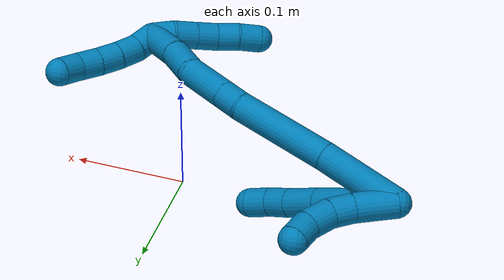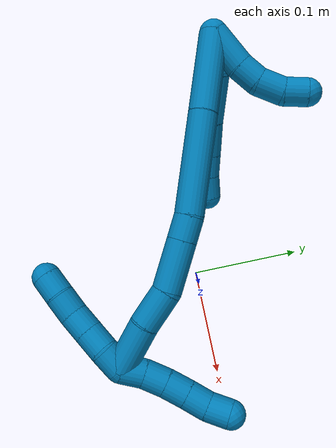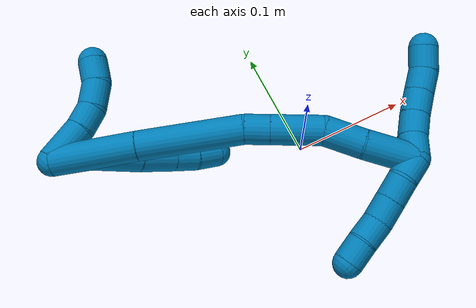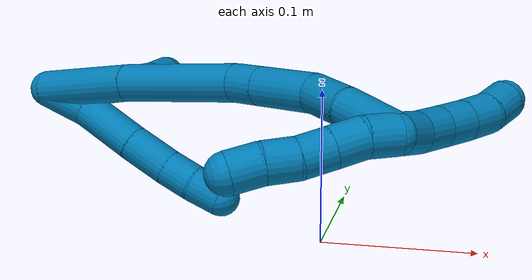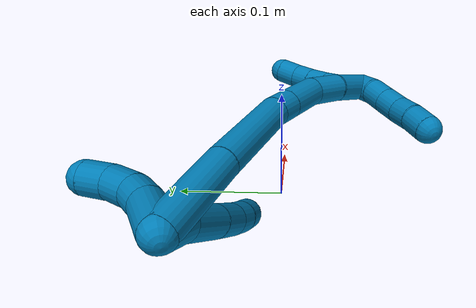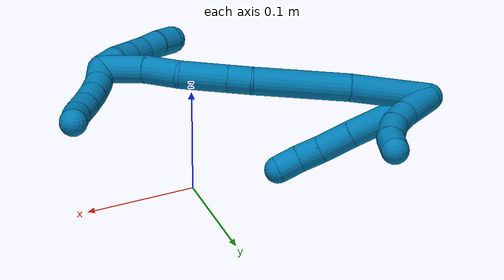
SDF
<sdf version="1.7">
 <world name="default">
  <model name="9">
   <static>0</static>
   <link name="9">
    <collision name="collision-cylinder-e_1_2_8">
     <pose>0.010625 -0.00347 0.011925 0.283165 0.707666 0.105202</pose>
     <geometry><cylinder><radius>0.0125</radius><length>0.032689</length></cylinder></geometry>
     <surface>
      <friction><ode><mu>1.16</mu><mu2>1.16</mu2><slip1>0</slip1><slip2>0</slip2></ode></friction>
      <contact><ode><kp>1e+06</kp><kd>1</kd><max_vel>0</max_vel><min_depth>0.001</min_depth></ode></contact>
     </surface>
    </collision>
    <visual name="visual-cylinder-e_1_2_8">
     <pose>0.010625 -0.00347 0.011925 0.283165 0.707666 0.105202</pose>
     <geometry><cylinder><radius>0.0125</radius><length>0.032689</length></cylinder></geometry>
     <material><ambient>0 0.490196 0.709804 1</ambient></material>
    </visual>
    <collision name="collision-cylinder-e_2_8_9">
     <pose>0.03754 -0.01366 0.036818 0.478126 0.839894 0.216797</pose>
     <geometry><cylinder><radius>0.0125</radius><length>0.043758</length></cylinder></geometry>
     <surface>
      <friction><ode><mu>1.16</mu><mu2>1.16</mu2><slip1>0</slip1><slip2>0</slip2></ode></friction>
      <contact><ode><kp>1e+06</kp><kd>1</kd><max_vel>0</max_vel><min_depth>0.001</min_depth></ode></contact>
     </surface>
    </collision>
    <visual name="visual-cylinder-e_2_8_9">
     <pose>0.03754 -0.01366 0.036818 0.478126 0.839894 0.216797</pose>
     <geometry><cylinder><radius>0.0125</radius><length>0.043758</length></cylinder></geometry>
     <material><ambient>0 0.490196 0.709804 1</ambient></material>
    </visual>
    <collision name="collision-cylinder-e_3_9_10">
     <pose>0.065245 -0.024463 0.059623 0.393371 0.819959 0.17277</pose>
     <geometry><cylinder><radius>0.0125</radius><length>0.031225</length></cylinder></geometry>
     <surface>
      <friction><ode><mu>1.16</mu><mu2>1.16</mu2><slip1>0</slip1><slip2>0</slip2></ode></friction>
      <contact><ode><kp>1e+06</kp><kd>1</kd><max_vel>0</max_vel><min_depth>0.001</min_depth></ode></contact>
     </surface>
    </collision>
    <visual name="visual-cylinder-e_3_9_10">
     <pose>0.065245 -0.024463 0.059623 0.393371 0.819959 0.17277</pose>
     <geometry><cylinder><radius>0.0125</radius><length>0.031225</length></cylinder></geometry>
     <material><ambient>0 0.490196 0.709804 1</ambient></material>
    </visual>
    <collision name="collision-cylinder-e_4_10_11">
     <pose>0.083879 -0.031673 0.076341 0.426598 0.76257 0.173232</pose>
     <geometry><cylinder><radius>0.0125</radius><length>0.020901</length></cylinder></geometry>
     <surface>
      <friction><ode><mu>1.16</mu><mu2>1.16</mu2><slip1>0</slip1><slip2>0</slip2></ode></friction>
      <contact><ode><kp>1e+06</kp><kd>1</kd><max_vel>0</max_vel><min_depth>0.001</min_depth></ode></contact>
     </surface>
    </collision>
    <visual name="visual-cylinder-e_4_10_11">
     <pose>0.083879 -0.031673 0.076341 0.426598 0.76257 0.173232</pose>
     <geometry><cylinder><radius>0.0125</radius><length>0.020901</length></cylinder></geometry>
     <material><ambient>0 0.490196 0.709804 1</ambient></material>
    </visual>
    <collision name="collision-cylinder-e_5_11_6">
     <pose>0.098126 -0.036854 0.09104 0.256931 0.715536 0.096513</pose>
     <geometry><cylinder><radius>0.0125</radius><length>0.021427</length></cylinder></geometry>
     <surface>
      <friction><ode><mu>1.16</mu><mu2>1.16</mu2><slip1>0</slip1><slip2>0</slip2></ode></friction>
      <contact><ode><kp>1e+06</kp><kd>1</kd><max_vel>0</max_vel><min_depth>0.001</min_depth></ode></contact>
     </surface>
    </collision>
    <visual name="visual-cylinder-e_5_11_6">
     <pose>0.098126 -0.036854 0.09104 0.256931 0.715536 0.096513</pose>
     <geometry><cylinder><radius>0.0125</radius><length>0.021427</length></cylinder></geometry>
     <material><ambient>0 0.490196 0.709804 1</ambient></material>
    </visual>
    <collision name="collision-cylinder-e_1_2_12">
     <pose>0.002701 0.003348 0.017386 -0.190235 0.151362 -0.014468</pose>
     <geometry><cylinder><radius>0.0125</radius><length>0.035819</length></cylinder></geometry>
     <surface>
      <friction><ode><mu>1.16</mu><mu2>1.16</mu2><slip1>0</slip1><slip2>0</slip2></ode></friction>
      <contact><ode><kp>1e+06</kp><kd>1</kd><max_vel>0</max_vel><min_depth>0.001</min_depth></ode></contact>
     </surface>
    </collision>
    <visual name="visual-cylinder-e_1_2_12">
     <pose>0.002701 0.003348 0.017386 -0.190235 0.151362 -0.014468</pose>
     <geometry><cylinder><radius>0.0125</radius><length>0.035819</length></cylinder></geometry>
     <material><ambient>0 0.490196 0.709804 1</ambient></material>
    </visual>
    <collision name="collision-cylinder-e_2_12_13">
     <pose>0.006009 0.010204 0.044265 -0.353997 0.060004 -0.010736</pose>
     <geometry><cylinder><radius>0.0125</radius><length>0.020279</length></cylinder></geometry>
     <surface>
      <friction><ode><mu>1.16</mu><mu2>1.16</mu2><slip1>0</slip1><slip2>0</slip2></ode></friction>
      <contact><ode><kp>1e+06</kp><kd>1</kd><max_vel>0</max_vel><min_depth>0.001</min_depth></ode></contact>
     </surface>
    </collision>
    <visual name="visual-cylinder-e_2_12_13">
     <pose>0.006009 0.010204 0.044265 -0.353997 0.060004 -0.010736</pose>
     <geometry><cylinder><radius>0.0125</radius><length>0.020279</length></cylinder></geometry>
     <material><ambient>0 0.490196 0.709804 1</ambient></material>
    </visual>
    <collision name="collision-cylinder-e_3_13_14">
     <pose>0.0058 0.020698 0.063008 -0.646818 -0.070399 0.023605</pose>
     <geometry><cylinder><radius>0.0125</radius><length>0.023238</length></cylinder></geometry>
     <surface>
      <friction><ode><mu>1.16</mu><mu2>1.16</mu2><slip1>0</slip1><slip2>0</slip2></ode></friction>
      <contact><ode><kp>1e+06</kp><kd>1</kd><max_vel>0</max_vel><min_depth>0.001</min_depth></ode></contact>
     </surface>
    </collision>
    <visual name="visual-cylinder-e_3_13_14">
     <pose>0.0058 0.020698 0.063008 -0.646818 -0.070399 0.023605</pose>
     <geometry><cylinder><radius>0.0125</radius><length>0.023238</length></cylinder></geometry>
     <material><ambient>0 0.490196 0.709804 1</ambient></material>
    </visual>
    <collision name="collision-cylinder-e_4_14_5">
     <pose>0.002586 0.035872 0.078082 -0.952551 -0.234053 0.12115</pose>
     <geometry><cylinder><radius>0.0125</radius><length>0.020663</length></cylinder></geometry>
     <surface>
      <friction><ode><mu>1.16</mu><mu2>1.16</mu2><slip1>0</slip1><slip2>0</slip2></ode></friction>
      <contact><ode><kp>1e+06</kp><kd>1</kd><max_vel>0</max_vel><min_depth>0.001</min_depth></ode></contact>
     </surface>
    </collision>
    <visual name="visual-cylinder-e_4_14_5">
     <pose>0.002586 0.035872 0.078082 -0.952551 -0.234053 0.12115</pose>
     <geometry><cylinder><radius>0.0125</radius><length>0.020663</length></cylinder></geometry>
     <material><ambient>0 0.490196 0.709804 1</ambient></material>
    </visual>
    <collision name="collision-cylinder-e_1_2_15">
     <pose>0.007925 -0.021542 0.027737 0.660347 0.221951 0.076344</pose>
     <geometry><cylinder><radius>0.0125</radius><length>0.072006</length></cylinder></geometry>
     <surface>
      <friction><ode><mu>1.16</mu><mu2>1.16</mu2><slip1>0</slip1><slip2>0</slip2></ode></friction>
      <contact><ode><kp>1e+06</kp><kd>1</kd><max_vel>0</max_vel><min_depth>0.001</min_depth></ode></contact>
     </surface>
    </collision>
    <visual name="visual-cylinder-e_1_2_15">
     <pose>0.007925 -0.021542 0.027737 0.660347 0.221951 0.076344</pose>
     <geometry><cylinder><radius>0.0125</radius><length>0.072006</length></cylinder></geometry>
     <material><ambient>0 0.490196 0.709804 1</ambient></material>
    </visual>
    <collision name="collision-cylinder-e_2_15_16">
     <pose>0.027918 -0.068547 0.088916 0.650747 0.279576 0.094867</pose>
     <geometry><cylinder><radius>0.0125</radius><length>0.08746</length></cylinder></geometry>
     <surface>
      <friction><ode><mu>1.16</mu><mu2>1.16</mu2><slip1>0</slip1><slip2>0</slip2></ode></friction>
      <contact><ode><kp>1e+06</kp><kd>1</kd><max_vel>0</max_vel><min_depth>0.001</min_depth></ode></contact>
     </surface>
    </collision>
    <visual name="visual-cylinder-e_2_15_16">
     <pose>0.027918 -0.068547 0.088916 0.650747 0.279576 0.094867</pose>
     <geometry><cylinder><radius>0.0125</radius><length>0.08746</length></cylinder></geometry>
     <material><ambient>0 0.490196 0.709804 1</ambient></material>
    </visual>
    <collision name="collision-cylinder-e_3_16_17">
     <pose>0.043838 -0.101025 0.129164 0.800608 0.37542 0.160408</pose>
     <geometry><cylinder><radius>0.0125</radius><length>0.021014</length></cylinder></geometry>
     <surface>
      <friction><ode><mu>1.16</mu><mu2>1.16</mu2><slip1>0</slip1><slip2>0</slip2></ode></friction>
      <contact><ode><kp>1e+06</kp><kd>1</kd><max_vel>0</max_vel><min_depth>0.001</min_depth></ode></contact>
     </surface>
    </collision>
    <visual name="visual-cylinder-e_3_16_17">
     <pose>0.043838 -0.101025 0.129164 0.800608 0.37542 0.160408</pose>
     <geometry><cylinder><radius>0.0125</radius><length>0.021014</length></cylinder></geometry>
     <material><ambient>0 0.490196 0.709804 1</ambient></material>
    </visual>
    <collision name="collision-cylinder-e_4_17_18">
     <pose>0.055581 -0.122416 0.149903 0.800985 0.375486 0.16052</pose>
     <geometry><cylinder><radius>0.0125</radius><length>0.043034</length></cylinder></geometry>
     <surface>
      <friction><ode><mu>1.16</mu><mu2>1.16</mu2><slip1>0</slip1><slip2>0</slip2></ode></friction>
      <contact><ode><kp>1e+06</kp><kd>1</kd><max_vel>0</max_vel><min_depth>0.001</min_depth></ode></contact>
     </surface>
    </collision>
    <visual name="visual-cylinder-e_4_17_18">
     <pose>0.055581 -0.122416 0.149903 0.800985 0.375486 0.16052</pose>
     <geometry><cylinder><radius>0.0125</radius><length>0.043034</length></cylinder></geometry>
     <material><ambient>0 0.490196 0.709804 1</ambient></material>
    </visual>
    <collision name="collision-cylinder-e_5_18_19">
     <pose>0.07131 -0.149896 0.170098 1.12507 0.494813 0.315846</pose>
     <geometry><cylinder><radius>0.0125</radius><length>0.033012</length></cylinder></geometry>
     <surface>
      <friction><ode><mu>1.16</mu><mu2>1.16</mu2><slip1>0</slip1><slip2>0</slip2></ode></friction>
      <contact><ode><kp>1e+06</kp><kd>1</kd><max_vel>0</max_vel><min_depth>0.001</min_depth></ode></contact>
     </surface>
    </collision>
    <visual name="visual-cylinder-e_5_18_19">
     <pose>0.07131 -0.149896 0.170098 1.12507 0.494813 0.315846</pose>
     <geometry><cylinder><radius>0.0125</radius><length>0.033012</length></cylinder></geometry>
     <material><ambient>0 0.490196 0.709804 1</ambient></material>
    </visual>
    <collision name="collision-cylinder-e_6_19_1">
     <pose>0.091328 -0.17831 0.185839 1.01637 0.594801 0.338157</pose>
     <geometry><cylinder><radius>0.0125</radius><length>0.043474</length></cylinder></geometry>
     <surface>
      <friction><ode><mu>1.16</mu><mu2>1.16</mu2><slip1>0</slip1><slip2>0</slip2></ode></friction>
      <contact><ode><kp>1e+06</kp><kd>1</kd><max_vel>0</max_vel><min_depth>0.001</min_depth></ode></contact>
     </surface>
    </collision>
    <visual name="visual-cylinder-e_6_19_1">
     <pose>0.091328 -0.17831 0.185839 1.01637 0.594801 0.338157</pose>
     <geometry><cylinder><radius>0.0125</radius><length>0.043474</length></cylinder></geometry>
     <material><ambient>0 0.490196 0.709804 1</ambient></material>
    </visual>
    <collision name="collision-cylinder-e_1_1_20">
     <pose>0.102406 -0.195872 0.185637 2.9127 -0.110469 -0.896682</pose>
     <geometry><cylinder><radius>0.0125</radius><length>0.02</length></cylinder></geometry>
     <surface>
      <friction><ode><mu>1.16</mu><mu2>1.16</mu2><slip1>0</slip1><slip2>0</slip2></ode></friction>
      <contact><ode><kp>1e+06</kp><kd>1</kd><max_vel>0</max_vel><min_depth>0.001</min_depth></ode></contact>
     </surface>
    </collision>
    <visual name="visual-cylinder-e_1_1_20">
     <pose>0.102406 -0.195872 0.185637 2.9127 -0.110469 -0.896682</pose>
     <geometry><cylinder><radius>0.0125</radius><length>0.02</length></cylinder></geometry>
     <material><ambient>0 0.490196 0.709804 1</ambient></material>
    </visual>
    <collision name="collision-cylinder-e_2_20_21">
     <pose>0.102307 -0.199699 0.166132 2.983 0.100498 1.12849</pose>
     <geometry><cylinder><radius>0.0125</radius><length>0.02</length></cylinder></geometry>
     <surface>
      <friction><ode><mu>1.16</mu><mu2>1.16</mu2><slip1>0</slip1><slip2>0</slip2></ode></friction>
      <contact><ode><kp>1e+06</kp><kd>1</kd><max_vel>0</max_vel><min_depth>0.001</min_depth></ode></contact>
     </surface>
    </collision>
    <visual name="visual-cylinder-e_2_20_21">
     <pose>0.102307 -0.199699 0.166132 2.983 0.100498 1.12849</pose>
     <geometry><cylinder><radius>0.0125</radius><length>0.02</length></cylinder></geometry>
     <material><ambient>0 0.490196 0.709804 1</ambient></material>
    </visual>
    <collision name="collision-cylinder-e_3_21_22">
     <pose>0.104175 -0.202849 0.146471 2.98244 0.086597 0.995385</pose>
     <geometry><cylinder><radius>0.0125</radius><length>0.02</length></cylinder></geometry>
     <surface>
      <friction><ode><mu>1.16</mu><mu2>1.16</mu2><slip1>0</slip1><slip2>0</slip2></ode></friction>
      <contact><ode><kp>1e+06</kp><kd>1</kd><max_vel>0</max_vel><min_depth>0.001</min_depth></ode></contact>
     </surface>
    </collision>
    <visual name="visual-cylinder-e_3_21_22">
     <pose>0.104175 -0.202849 0.146471 2.98244 0.086597 0.995385</pose>
     <geometry><cylinder><radius>0.0125</radius><length>0.02</length></cylinder></geometry>
     <material><ambient>0 0.490196 0.709804 1</ambient></material>
    </visual>
    <collision name="collision-cylinder-e_4_22_23">
     <pose>0.104216 -0.205667 0.126746 3.01689 -0.082494 -1.16819</pose>
     <geometry><cylinder><radius>0.0125</radius><length>0.02</length></cylinder></geometry>
     <surface>
      <friction><ode><mu>1.16</mu><mu2>1.16</mu2><slip1>0</slip1><slip2>0</slip2></ode></friction>
      <contact><ode><kp>1e+06</kp><kd>1</kd><max_vel>0</max_vel><min_depth>0.001</min_depth></ode></contact>
     </surface>
    </collision>
    <visual name="visual-cylinder-e_4_22_23">
     <pose>0.104216 -0.205667 0.126746 3.01689 -0.082494 -1.16819</pose>
     <geometry><cylinder><radius>0.0125</radius><length>0.02</length></cylinder></geometry>
     <material><ambient>0 0.490196 0.709804 1</ambient></material>
    </visual>
    <collision name="collision-cylinder-e_5_23_4">
     <pose>0.103961 -0.20782 0.106915 3.05002 0.056877 1.11121</pose>
     <geometry><cylinder><radius>0.0125</radius><length>0.02</length></cylinder></geometry>
     <surface>
      <friction><ode><mu>1.16</mu><mu2>1.16</mu2><slip1>0</slip1><slip2>0</slip2></ode></friction>
      <contact><ode><kp>1e+06</kp><kd>1</kd><max_vel>0</max_vel><min_depth>0.001</min_depth></ode></contact>
     </surface>
    </collision>
    <visual name="visual-cylinder-e_5_23_4">
     <pose>0.103961 -0.20782 0.106915 3.05002 0.056877 1.11121</pose>
     <geometry><cylinder><radius>0.0125</radius><length>0.02</length></cylinder></geometry>
     <material><ambient>0 0.490196 0.709804 1</ambient></material>
    </visual>
    <collision name="collision-cylinder-e_1_1_24">
     <pose>0.103689 -0.186301 0.202132 -0.820863 0.018002 -0.007834</pose>
     <geometry><cylinder><radius>0.0125</radius><length>0.02</length></cylinder></geometry>
     <surface>
      <friction><ode><mu>1.16</mu><mu2>1.16</mu2><slip1>0</slip1><slip2>0</slip2></ode></friction>
      <contact><ode><kp>1e+06</kp><kd>1</kd><max_vel>0</max_vel><min_depth>0.001</min_depth></ode></contact>
     </surface>
    </collision>
    <visual name="visual-cylinder-e_1_1_24">
     <pose>0.103689 -0.186301 0.202132 -0.820863 0.018002 -0.007834</pose>
     <geometry><cylinder><radius>0.0125</radius><length>0.02</length></cylinder></geometry>
     <material><ambient>0 0.490196 0.709804 1</ambient></material>
    </visual>
    <collision name="collision-cylinder-e_2_24_25">
     <pose>0.10328 -0.173155 0.21705 -0.623614 -0.058859 0.018977</pose>
     <geometry><cylinder><radius>0.0125</radius><length>0.02</length></cylinder></geometry>
     <surface>
      <friction><ode><mu>1.16</mu><mu2>1.16</mu2><slip1>0</slip1><slip2>0</slip2></ode></friction>
      <contact><ode><kp>1e+06</kp><kd>1</kd><max_vel>0</max_vel><min_depth>0.001</min_depth></ode></contact>
     </surface>
    </collision>
    <visual name="visual-cylinder-e_2_24_25">
     <pose>0.10328 -0.173155 0.21705 -0.623614 -0.058859 0.018977</pose>
     <geometry><cylinder><radius>0.0125</radius><length>0.02</length></cylinder></geometry>
     <material><ambient>0 0.490196 0.709804 1</ambient></material>
    </visual>
    <collision name="collision-cylinder-e_3_25_26">
     <pose>0.102082 -0.162225 0.233733 -0.53637 -0.061029 0.016776</pose>
     <geometry><cylinder><radius>0.0125</radius><length>0.02</length></cylinder></geometry>
     <surface>
      <friction><ode><mu>1.16</mu><mu2>1.16</mu2><slip1>0</slip1><slip2>0</slip2></ode></friction>
      <contact><ode><kp>1e+06</kp><kd>1</kd><max_vel>0</max_vel><min_depth>0.001</min_depth></ode></contact>
     </surface>
    </collision>
    <visual name="visual-cylinder-e_3_25_26">
     <pose>0.102082 -0.162225 0.233733 -0.53637 -0.061029 0.016776</pose>
     <geometry><cylinder><radius>0.0125</radius><length>0.02</length></cylinder></geometry>
     <material><ambient>0 0.490196 0.709804 1</ambient></material>
    </visual>
    <collision name="collision-cylinder-e_4_26_27">
     <pose>0.100462 -0.152401 0.251069 -0.494702 -0.101171 0.025568</pose>
     <geometry><cylinder><radius>0.0125</radius><length>0.02</length></cylinder></geometry>
     <surface>
      <friction><ode><mu>1.16</mu><mu2>1.16</mu2><slip1>0</slip1><slip2>0</slip2></ode></friction>
      <contact><ode><kp>1e+06</kp><kd>1</kd><max_vel>0</max_vel><min_depth>0.001</min_depth></ode></contact>
     </surface>
    </collision>
    <visual name="visual-cylinder-e_4_26_27">
     <pose>0.100462 -0.152401 0.251069 -0.494702 -0.101171 0.025568</pose>
     <geometry><cylinder><radius>0.0125</radius><length>0.02</length></cylinder></geometry>
     <material><ambient>0 0.490196 0.709804 1</ambient></material>
    </visual>
    <collision name="collision-cylinder-e_5_27_3">
     <pose>0.096389 -0.141952 0.26743 -0.645322 -0.311309 0.104837</pose>
     <geometry><cylinder><radius>0.0125</radius><length>0.02</length></cylinder></geometry>
     <surface>
      <friction><ode><mu>1.16</mu><mu2>1.16</mu2><slip1>0</slip1><slip2>0</slip2></ode></friction>
      <contact><ode><kp>1e+06</kp><kd>1</kd><max_vel>0</max_vel><min_depth>0.001</min_depth></ode></contact>
     </surface>
    </collision>
    <visual name="visual-cylinder-e_5_27_3">
     <pose>0.096389 -0.141952 0.26743 -0.645322 -0.311309 0.104837</pose>
     <geometry><cylinder><radius>0.0125</radius><length>0.02</length></cylinder></geometry>
     <material><ambient>0 0.490196 0.709804 1</ambient></material>
    </visual>
    <collision name="collision-sphere-3">
     <pose>0.093326 -0.136226 0.275035 0 -0 0</pose>
     <geometry><sphere><radius>0.0125</radius></sphere></geometry>
     <surface>
      <friction><ode><mu>1.16</mu><mu2>1.16</mu2><slip1>0</slip1><slip2>0</slip2></ode></friction>
      <contact><ode><kp>1e+06</kp><kd>1</kd><max_vel>0</max_vel><min_depth>0.001</min_depth></ode></contact>
     </surface>
    </collision>
    <visual name="visual-sphere-3">
     <pose>0.093326 -0.136226 0.275035 0 -0 0</pose>
     <geometry><sphere><radius>0.0125</radius></sphere></geometry>
     <material><ambient>0 0.490196 0.709804 1</ambient></material>
    </visual>
    <collision name="collision-sphere-27">
     <pose>0.099452 -0.147677 0.259825 0 -0 0</pose>
     <geometry><sphere><radius>0.0125</radius></sphere></geometry>
     <surface>
      <friction><ode><mu>1.16</mu><mu2>1.16</mu2><slip1>0</slip1><slip2>0</slip2></ode></friction>
      <contact><ode><kp>1e+06</kp><kd>1</kd><max_vel>0</max_vel><min_depth>0.001</min_depth></ode></contact>
     </surface>
    </collision>
    <visual name="visual-sphere-27">
     <pose>0.099452 -0.147677 0.259825 0 -0 0</pose>
     <geometry><sphere><radius>0.0125</radius></sphere></geometry>
     <material><ambient>0 0.490196 0.709804 1</ambient></material>
    </visual>
    <collision name="collision-sphere-26">
     <pose>0.101472 -0.157124 0.242313 0 -0 0</pose>
     <geometry><sphere><radius>0.0125</radius></sphere></geometry>
     <surface>
      <friction><ode><mu>1.16</mu><mu2>1.16</mu2><slip1>0</slip1><slip2>0</slip2></ode></friction>
      <contact><ode><kp>1e+06</kp><kd>1</kd><max_vel>0</max_vel><min_depth>0.001</min_depth></ode></contact>
     </surface>
    </collision>
    <visual name="visual-sphere-26">
     <pose>0.101472 -0.157124 0.242313 0 -0 0</pose>
     <geometry><sphere><radius>0.0125</radius></sphere></geometry>
     <material><ambient>0 0.490196 0.709804 1</ambient></material>
    </visual>
    <collision name="collision-sphere-25">
     <pose>0.102692 -0.167325 0.225154 0 -0 0</pose>
     <geometry><sphere><radius>0.0125</radius></sphere></geometry>
     <surface>
      <friction><ode><mu>1.16</mu><mu2>1.16</mu2><slip1>0</slip1><slip2>0</slip2></ode></friction>
      <contact><ode><kp>1e+06</kp><kd>1</kd><max_vel>0</max_vel><min_depth>0.001</min_depth></ode></contact>
     </surface>
    </collision>
    <visual name="visual-sphere-25">
     <pose>0.102692 -0.167325 0.225154 0 -0 0</pose>
     <geometry><sphere><radius>0.0125</radius></sphere></geometry>
     <material><ambient>0 0.490196 0.709804 1</ambient></material>
    </visual>
    <collision name="collision-sphere-24">
     <pose>0.103869 -0.178985 0.208946 0 -0 0</pose>
     <geometry><sphere><radius>0.0125</radius></sphere></geometry>
     <surface>
      <friction><ode><mu>1.16</mu><mu2>1.16</mu2><slip1>0</slip1><slip2>0</slip2></ode></friction>
      <contact><ode><kp>1e+06</kp><kd>1</kd><max_vel>0</max_vel><min_depth>0.001</min_depth></ode></contact>
     </surface>
    </collision>
    <visual name="visual-sphere-24">
     <pose>0.103869 -0.178985 0.208946 0 -0 0</pose>
     <geometry><sphere><radius>0.0125</radius></sphere></geometry>
     <material><ambient>0 0.490196 0.709804 1</ambient></material>
    </visual>
    <collision name="collision-sphere-4">
     <pose>0.104529 -0.208733 0.096973 0 -0 0</pose>
     <geometry><sphere><radius>0.0125</radius></sphere></geometry>
     <surface>
      <friction><ode><mu>1.16</mu><mu2>1.16</mu2><slip1>0</slip1><slip2>0</slip2></ode></friction>
      <contact><ode><kp>1e+06</kp><kd>1</kd><max_vel>0</max_vel><min_depth>0.001</min_depth></ode></contact>
     </surface>
    </collision>
    <visual name="visual-sphere-4">
     <pose>0.104529 -0.208733 0.096973 0 -0 0</pose>
     <geometry><sphere><radius>0.0125</radius></sphere></geometry>
     <material><ambient>0 0.490196 0.709804 1</ambient></material>
    </visual>
    <collision name="collision-sphere-23">
     <pose>0.103392 -0.206907 0.116857 0 -0 0</pose>
     <geometry><sphere><radius>0.0125</radius></sphere></geometry>
     <surface>
      <friction><ode><mu>1.16</mu><mu2>1.16</mu2><slip1>0</slip1><slip2>0</slip2></ode></friction>
      <contact><ode><kp>1e+06</kp><kd>1</kd><max_vel>0</max_vel><min_depth>0.001</min_depth></ode></contact>
     </surface>
    </collision>
    <visual name="visual-sphere-23">
     <pose>0.103392 -0.206907 0.116857 0 -0 0</pose>
     <geometry><sphere><radius>0.0125</radius></sphere></geometry>
     <material><ambient>0 0.490196 0.709804 1</ambient></material>
    </visual>
    <collision name="collision-sphere-22">
     <pose>0.10504 -0.204428 0.136635 0 -0 0</pose>
     <geometry><sphere><radius>0.0125</radius></sphere></geometry>
     <surface>
      <friction><ode><mu>1.16</mu><mu2>1.16</mu2><slip1>0</slip1><slip2>0</slip2></ode></friction>
      <contact><ode><kp>1e+06</kp><kd>1</kd><max_vel>0</max_vel><min_depth>0.001</min_depth></ode></contact>
     </surface>
    </collision>
    <visual name="visual-sphere-22">
     <pose>0.10504 -0.204428 0.136635 0 -0 0</pose>
     <geometry><sphere><radius>0.0125</radius></sphere></geometry>
     <material><ambient>0 0.490196 0.709804 1</ambient></material>
    </visual>
    <collision name="collision-sphere-21">
     <pose>0.10331 -0.20127 0.156308 0 -0 0</pose>
     <geometry><sphere><radius>0.0125</radius></sphere></geometry>
     <surface>
      <friction><ode><mu>1.16</mu><mu2>1.16</mu2><slip1>0</slip1><slip2>0</slip2></ode></friction>
      <contact><ode><kp>1e+06</kp><kd>1</kd><max_vel>0</max_vel><min_depth>0.001</min_depth></ode></contact>
     </surface>
    </collision>
    <visual name="visual-sphere-21">
     <pose>0.10331 -0.20127 0.156308 0 -0 0</pose>
     <geometry><sphere><radius>0.0125</radius></sphere></geometry>
     <material><ambient>0 0.490196 0.709804 1</ambient></material>
    </visual>
    <collision name="collision-sphere-20">
     <pose>0.101304 -0.198127 0.175957 0 -0 0</pose>
     <geometry><sphere><radius>0.0125</radius></sphere></geometry>
     <surface>
      <friction><ode><mu>1.16</mu><mu2>1.16</mu2><slip1>0</slip1><slip2>0</slip2></ode></friction>
      <contact><ode><kp>1e+06</kp><kd>1</kd><max_vel>0</max_vel><min_depth>0.001</min_depth></ode></contact>
     </surface>
    </collision>
    <visual name="visual-sphere-20">
     <pose>0.101304 -0.198127 0.175957 0 -0 0</pose>
     <geometry><sphere><radius>0.0125</radius></sphere></geometry>
     <material><ambient>0 0.490196 0.709804 1</ambient></material>
    </visual>
    <collision name="collision-sphere-6">
     <pose>0.105155 -0.038909 0.098861 0 -0 0</pose>
     <geometry><sphere><radius>0.0125</radius></sphere></geometry>
     <surface>
      <friction><ode><mu>1.16</mu><mu2>1.16</mu2><slip1>0</slip1><slip2>0</slip2></ode></friction>
      <contact><ode><kp>1e+06</kp><kd>1</kd><max_vel>0</max_vel><min_depth>0.001</min_depth></ode></contact>
     </surface>
    </collision>
    <visual name="visual-sphere-6">
     <pose>0.105155 -0.038909 0.098861 0 -0 0</pose>
     <geometry><sphere><radius>0.0125</radius></sphere></geometry>
     <material><ambient>0 0.490196 0.709804 1</ambient></material>
    </visual>
    <collision name="collision-sphere-11">
     <pose>0.091098 -0.034799 0.08322 0 -0 0</pose>
     <geometry><sphere><radius>0.0125</radius></sphere></geometry>
     <surface>
      <friction><ode><mu>1.16</mu><mu2>1.16</mu2><slip1>0</slip1><slip2>0</slip2></ode></friction>
      <contact><ode><kp>1e+06</kp><kd>1</kd><max_vel>0</max_vel><min_depth>0.001</min_depth></ode></contact>
     </surface>
    </collision>
    <visual name="visual-sphere-11">
     <pose>0.091098 -0.034799 0.08322 0 -0 0</pose>
     <geometry><sphere><radius>0.0125</radius></sphere></geometry>
     <material><ambient>0 0.490196 0.709804 1</ambient></material>
    </visual>
    <collision name="collision-sphere-10">
     <pose>0.07666 -0.028546 0.069461 0 -0 0</pose>
     <geometry><sphere><radius>0.0125</radius></sphere></geometry>
     <surface>
      <friction><ode><mu>1.16</mu><mu2>1.16</mu2><slip1>0</slip1><slip2>0</slip2></ode></friction>
      <contact><ode><kp>1e+06</kp><kd>1</kd><max_vel>0</max_vel><min_depth>0.001</min_depth></ode></contact>
     </surface>
    </collision>
    <visual name="visual-sphere-10">
     <pose>0.07666 -0.028546 0.069461 0 -0 0</pose>
     <geometry><sphere><radius>0.0125</radius></sphere></geometry>
     <material><ambient>0 0.490196 0.709804 1</ambient></material>
    </visual>
    <collision name="collision-sphere-9">
     <pose>0.053831 -0.02038 0.049785 0 -0 0</pose>
     <geometry><sphere><radius>0.0125</radius></sphere></geometry>
     <surface>
      <friction><ode><mu>1.16</mu><mu2>1.16</mu2><slip1>0</slip1><slip2>0</slip2></ode></friction>
      <contact><ode><kp>1e+06</kp><kd>1</kd><max_vel>0</max_vel><min_depth>0.001</min_depth></ode></contact>
     </surface>
    </collision>
    <visual name="visual-sphere-9">
     <pose>0.053831 -0.02038 0.049785 0 -0 0</pose>
     <geometry><sphere><radius>0.0125</radius></sphere></geometry>
     <material><ambient>0 0.490196 0.709804 1</ambient></material>
    </visual>
    <collision name="collision-sphere-2">
     <geometry><sphere><radius>0.0125</radius></sphere></geometry>
     <surface>
      <friction><ode><mu>1.16</mu><mu2>1.16</mu2><slip1>0</slip1><slip2>0</slip2></ode></friction>
      <contact><ode><kp>1e+06</kp><kd>1</kd><max_vel>0</max_vel><min_depth>0.001</min_depth></ode></contact>
     </surface>
    </collision>
    <visual name="visual-sphere-2">
     <geometry><sphere><radius>0.0125</radius></sphere></geometry>
     <material><ambient>0 0.490196 0.709804 1</ambient></material>
    </visual>
    <collision name="collision-sphere-19">
     <pose>0.079148 -0.163003 0.17636 0 -0 0</pose>
     <geometry><sphere><radius>0.0125</radius></sphere></geometry>
     <surface>
      <friction><ode><mu>1.16</mu><mu2>1.16</mu2><slip1>0</slip1><slip2>0</slip2></ode></friction>
      <contact><ode><kp>1e+06</kp><kd>1</kd><max_vel>0</max_vel><min_depth>0.001</min_depth></ode></contact>
     </surface>
    </collision>
    <visual name="visual-sphere-19">
     <pose>0.079148 -0.163003 0.17636 0 -0 0</pose>
     <geometry><sphere><radius>0.0125</radius></sphere></geometry>
     <material><ambient>0 0.490196 0.709804 1</ambient></material>
    </visual>
    <collision name="collision-sphere-8">
     <pose>0.02125 -0.00694 0.023851 0 -0 0</pose>
     <geometry><sphere><radius>0.0125</radius></sphere></geometry>
     <surface>
      <friction><ode><mu>1.16</mu><mu2>1.16</mu2><slip1>0</slip1><slip2>0</slip2></ode></friction>
      <contact><ode><kp>1e+06</kp><kd>1</kd><max_vel>0</max_vel><min_depth>0.001</min_depth></ode></contact>
     </surface>
    </collision>
    <visual name="visual-sphere-8">
     <pose>0.02125 -0.00694 0.023851 0 -0 0</pose>
     <geometry><sphere><radius>0.0125</radius></sphere></geometry>
     <material><ambient>0 0.490196 0.709804 1</ambient></material>
    </visual>
    <collision name="collision-sphere-12">
     <pose>0.005401 0.006696 0.034771 0 -0 0</pose>
     <geometry><sphere><radius>0.0125</radius></sphere></geometry>
     <surface>
      <friction><ode><mu>1.16</mu><mu2>1.16</mu2><slip1>0</slip1><slip2>0</slip2></ode></friction>
      <contact><ode><kp>1e+06</kp><kd>1</kd><max_vel>0</max_vel><min_depth>0.001</min_depth></ode></contact>
     </surface>
    </collision>
    <visual name="visual-sphere-12">
     <pose>0.005401 0.006696 0.034771 0 -0 0</pose>
     <geometry><sphere><radius>0.0125</radius></sphere></geometry>
     <material><ambient>0 0.490196 0.709804 1</ambient></material>
    </visual>
    <collision name="collision-sphere-13">
     <pose>0.006617 0.013713 0.053759 0 -0 0</pose>
     <geometry><sphere><radius>0.0125</radius></sphere></geometry>
     <surface>
      <friction><ode><mu>1.16</mu><mu2>1.16</mu2><slip1>0</slip1><slip2>0</slip2></ode></friction>
      <contact><ode><kp>1e+06</kp><kd>1</kd><max_vel>0</max_vel><min_depth>0.001</min_depth></ode></contact>
     </surface>
    </collision>
    <visual name="visual-sphere-13">
     <pose>0.006617 0.013713 0.053759 0 -0 0</pose>
     <geometry><sphere><radius>0.0125</radius></sphere></geometry>
     <material><ambient>0 0.490196 0.709804 1</ambient></material>
    </visual>
    <collision name="collision-sphere-14">
     <pose>0.004983 0.027682 0.072257 0 -0 0</pose>
     <geometry><sphere><radius>0.0125</radius></sphere></geometry>
     <surface>
      <friction><ode><mu>1.16</mu><mu2>1.16</mu2><slip1>0</slip1><slip2>0</slip2></ode></friction>
      <contact><ode><kp>1e+06</kp><kd>1</kd><max_vel>0</max_vel><min_depth>0.001</min_depth></ode></contact>
     </surface>
    </collision>
    <visual name="visual-sphere-14">
     <pose>0.004983 0.027682 0.072257 0 -0 0</pose>
     <geometry><sphere><radius>0.0125</radius></sphere></geometry>
     <material><ambient>0 0.490196 0.709804 1</ambient></material>
    </visual>
    <collision name="collision-sphere-5">
     <pose>0.00019 0.044062 0.083907 0 -0 0</pose>
     <geometry><sphere><radius>0.0125</radius></sphere></geometry>
     <surface>
      <friction><ode><mu>1.16</mu><mu2>1.16</mu2><slip1>0</slip1><slip2>0</slip2></ode></friction>
      <contact><ode><kp>1e+06</kp><kd>1</kd><max_vel>0</max_vel><min_depth>0.001</min_depth></ode></contact>
     </surface>
    </collision>
    <visual name="visual-sphere-5">
     <pose>0.00019 0.044062 0.083907 0 -0 0</pose>
     <geometry><sphere><radius>0.0125</radius></sphere></geometry>
     <material><ambient>0 0.490196 0.709804 1</ambient></material>
    </visual>
    <collision name="collision-sphere-15">
     <pose>0.015851 -0.043085 0.055474 0 -0 0</pose>
     <geometry><sphere><radius>0.0125</radius></sphere></geometry>
     <surface>
      <friction><ode><mu>1.16</mu><mu2>1.16</mu2><slip1>0</slip1><slip2>0</slip2></ode></friction>
      <contact><ode><kp>1e+06</kp><kd>1</kd><max_vel>0</max_vel><min_depth>0.001</min_depth></ode></contact>
     </surface>
    </collision>
    <visual name="visual-sphere-15">
     <pose>0.015851 -0.043085 0.055474 0 -0 0</pose>
     <geometry><sphere><radius>0.0125</radius></sphere></geometry>
     <material><ambient>0 0.490196 0.709804 1</ambient></material>
    </visual>
    <collision name="collision-sphere-16">
     <pose>0.039985 -0.094009 0.122358 0 -0 0</pose>
     <geometry><sphere><radius>0.0125</radius></sphere></geometry>
     <surface>
      <friction><ode><mu>1.16</mu><mu2>1.16</mu2><slip1>0</slip1><slip2>0</slip2></ode></friction>
      <contact><ode><kp>1e+06</kp><kd>1</kd><max_vel>0</max_vel><min_depth>0.001</min_depth></ode></contact>
     </surface>
    </collision>
    <visual name="visual-sphere-16">
     <pose>0.039985 -0.094009 0.122358 0 -0 0</pose>
     <geometry><sphere><radius>0.0125</radius></sphere></geometry>
     <material><ambient>0 0.490196 0.709804 1</ambient></material>
    </visual>
    <collision name="collision-sphere-17">
     <pose>0.04769 -0.108042 0.13597 0 -0 0</pose>
     <geometry><sphere><radius>0.0125</radius></sphere></geometry>
     <surface>
      <friction><ode><mu>1.16</mu><mu2>1.16</mu2><slip1>0</slip1><slip2>0</slip2></ode></friction>
      <contact><ode><kp>1e+06</kp><kd>1</kd><max_vel>0</max_vel><min_depth>0.001</min_depth></ode></contact>
     </surface>
    </collision>
    <visual name="visual-sphere-17">
     <pose>0.04769 -0.108042 0.13597 0 -0 0</pose>
     <geometry><sphere><radius>0.0125</radius></sphere></geometry>
     <material><ambient>0 0.490196 0.709804 1</ambient></material>
    </visual>
    <collision name="collision-sphere-18">
     <pose>0.063472 -0.136789 0.163836 0 -0 0</pose>
     <geometry><sphere><radius>0.0125</radius></sphere></geometry>
     <surface>
      <friction><ode><mu>1.16</mu><mu2>1.16</mu2><slip1>0</slip1><slip2>0</slip2></ode></friction>
      <contact><ode><kp>1e+06</kp><kd>1</kd><max_vel>0</max_vel><min_depth>0.001</min_depth></ode></contact>
     </surface>
    </collision>
    <visual name="visual-sphere-18">
     <pose>0.063472 -0.136789 0.163836 0 -0 0</pose>
     <geometry><sphere><radius>0.0125</radius></sphere></geometry>
     <material><ambient>0 0.490196 0.709804 1</ambient></material>
    </visual>
    <collision name="collision-sphere-1">
     <pose>0.103509 -0.193617 0.195317 0 -0 0</pose>
     <geometry><sphere><radius>0.0125</radius></sphere></geometry>
     <surface>
      <friction><ode><mu>1.16</mu><mu2>1.16</mu2><slip1>0</slip1><slip2>0</slip2></ode></friction>
      <contact><ode><kp>1e+06</kp><kd>1</kd><max_vel>0</max_vel><min_depth>0.001</min_depth></ode></contact>
     </surface>
    </collision>
    <visual name="visual-sphere-1">
     <pose>0.103509 -0.193617 0.195317 0 -0 0</pose>
     <geometry><sphere><radius>0.0125</radius></sphere></geometry>
     <material><ambient>0 0.490196 0.709804 1</ambient></material>
    </visual>
    <inertial>
     <pose>0.055199 -0.087432 0.110276 0 -0 0</pose>
     <mass>0.75</mass>
     <inertia>
      <ixx>0.000176</ixx>
      <ixy>0</ixy>
      <ixz>0</ixz>
      <iyy>0.000126</iyy>
      <iyz>0</iyz>
      <izz>4.9e-05</izz>
     </inertia>
    </inertial>
   </link>
   <pose>-0.204369 0.057391 0.079056 -1.08271 1.1409 -0.763257</pose>
  </model>
 </world>
</sdf>
